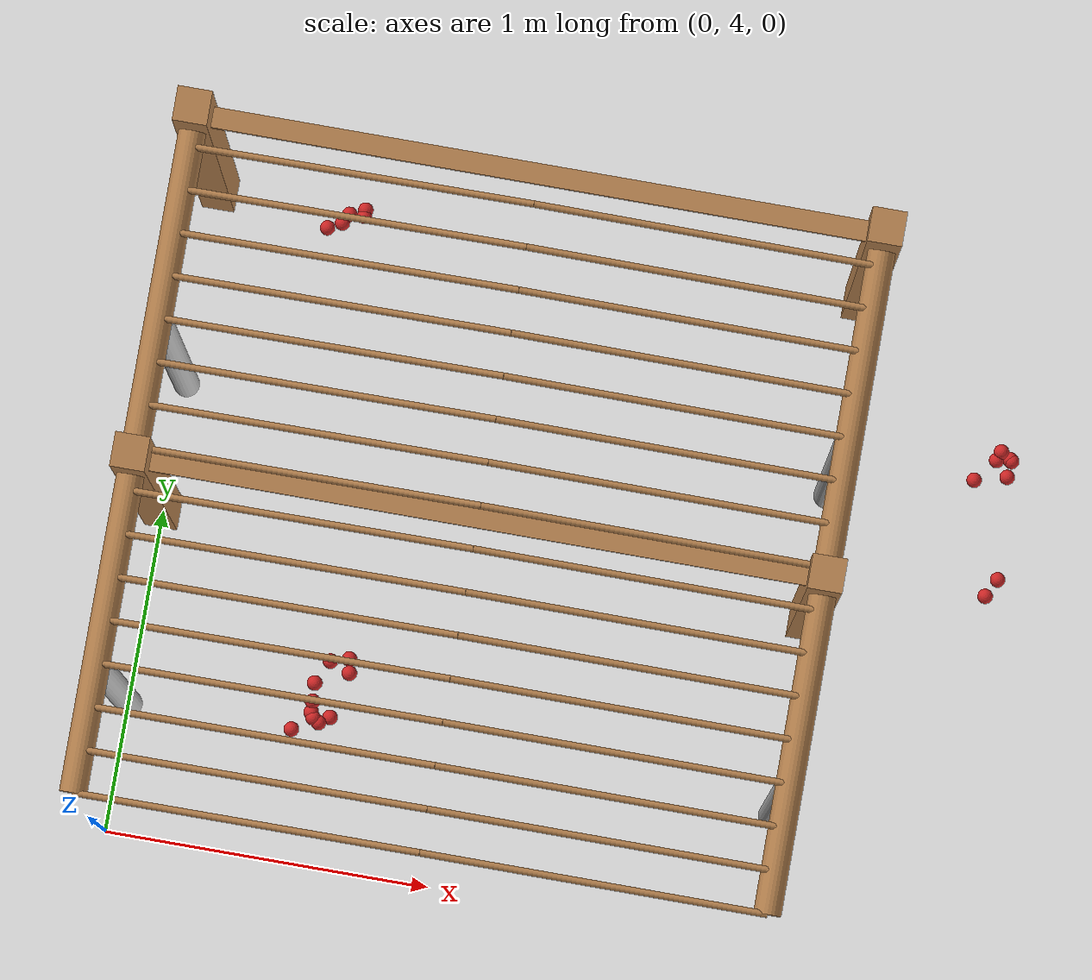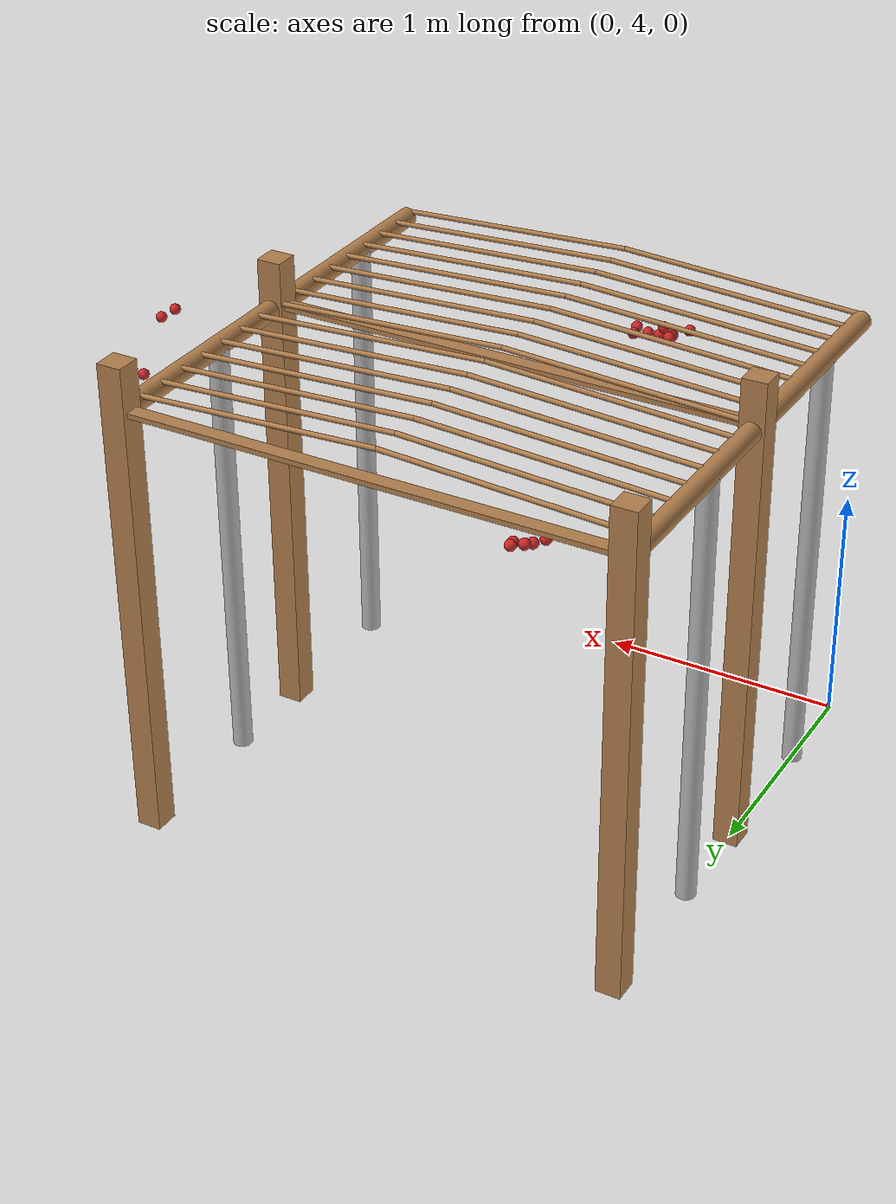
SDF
<sdf version="1.4">
 <model name="pergola">
  <include><name>post_5</name><pose>0.0 5.0 0 0 0 0</pose><uri>model://post</uri></include>
  <include><name>post_6</name><pose>0.0 6.0 0 0 0 0</pose><uri>model://post</uri></include>
  <include><name>post_12</name><pose>2.0 5.0 0 0 0 0</pose><uri>model://post</uri></include>
  <include><name>post_13</name><pose>2.0 6.0 0 0 0 0</pose><uri>model://post</uri></include>
  <link name="beam_5">
   <pose>1.0 5.0 1.81 0 0 0</pose>
   <collision name="collision"><geometry><box><size>2.0 0.06 0.02</size></box></geometry></collision>
   <visual name="visual">
    <geometry><box><size>2.0 0.06 0.02</size></box></geometry>
    <material><script><name>Gazebo/Wood</name></script></material>
   </visual>
   <inertial>
    <mass>5</mass>
    <inertia>
     <ixx>0.0016666666666666668</ixx>
     <ixy>0.0</ixy>
     <ixz>0.0</ixz>
     <iyy>1.6681666666666664</iyy>
     <iyz>0.0</iyz>
     <izz>1.6668333333333332</izz>
    </inertia>
   </inertial>
  </link>
  <link name="beam_6">
   <pose>1.0 6.0 1.81 0 0 0</pose>
   <collision name="collision"><geometry><box><size>2.0 0.06 0.02</size></box></geometry></collision>
   <visual name="visual">
    <geometry><box><size>2.0 0.06 0.02</size></box></geometry>
    <material><script><name>Gazebo/Wood</name></script></material>
   </visual>
   <inertial>
    <mass>5</mass>
    <inertia>
     <ixx>0.0016666666666666668</ixx>
     <ixy>0.0</ixy>
     <ixz>0.0</ixz>
     <iyy>1.6681666666666664</iyy>
     <iyz>0.0</iyz>
     <izz>1.6668333333333332</izz>
    </inertia>
   </inertial>
  </link>
  <include><name>tree_4</name><pose>0.0 4.4 0 0 0 0</pose><uri>model://tree_trunk</uri></include>
  <include><name>tree_5</name><pose>0.0 5.4 0 0 0 0</pose><uri>model://tree_trunk</uri></include>
  <include><name>tree_10</name><pose>2.0 4.4 0 0 0 0</pose><uri>model://tree_trunk</uri></include>
  <include><name>tree_11</name><pose>2.0 5.4 0 0 0 0</pose><uri>model://tree_trunk</uri></include>
  <link name="baseBranch_4">
   <pose>0.0 4.5 1.8 1.5707963267948966 0 0</pose>
   <collision name="collision">
    <geometry><cylinder><radius>0.04</radius><length>0.94</length></cylinder></geometry>
   </collision>
   <visual name="visual">
    <geometry><cylinder><radius>0.04</radius><length>0.94</length></cylinder></geometry>
    <material><script><name>Gazebo/WoodFloor</name></script></material>
   </visual>
   <inertial>
    <mass>10</mass>
    <inertia>
     <ixx>0.7403333333333334</ixx>
     <ixy>0.0</ixy>
     <ixz>0.0</ixz>
     <iyy>0.7403333333333334</iyy>
     <iyz>0.0</iyz>
     <izz>0.008</izz>
    </inertia>
   </inertial>
  </link>
  <link name="baseBranch_5">
   <pose>0.0 5.5 1.8 1.5707963267948966 0 0</pose>
   <collision name="collision">
    <geometry><cylinder><radius>0.04</radius><length>0.94</length></cylinder></geometry>
   </collision>
   <visual name="visual">
    <geometry><cylinder><radius>0.04</radius><length>0.94</length></cylinder></geometry>
    <material><script><name>Gazebo/WoodFloor</name></script></material>
   </visual>
   <inertial>
    <mass>10</mass>
    <inertia>
     <ixx>0.7403333333333334</ixx>
     <ixy>0.0</ixy>
     <ixz>0.0</ixz>
     <iyy>0.7403333333333334</iyy>
     <iyz>0.0</iyz>
     <izz>0.008</izz>
    </inertia>
   </inertial>
  </link>
  <link name="baseBranch_10">
   <pose>2.0 4.5 1.8 1.5707963267948966 0 0</pose>
   <collision name="collision">
    <geometry><cylinder><radius>0.04</radius><length>0.94</length></cylinder></geometry>
   </collision>
   <visual name="visual">
    <geometry><cylinder><radius>0.04</radius><length>0.94</length></cylinder></geometry>
    <material><script><name>Gazebo/WoodFloor</name></script></material>
   </visual>
   <inertial>
    <mass>10</mass>
    <inertia>
     <ixx>0.7403333333333334</ixx>
     <ixy>0.0</ixy>
     <ixz>0.0</ixz>
     <iyy>0.7403333333333334</iyy>
     <iyz>0.0</iyz>
     <izz>0.008</izz>
    </inertia>
   </inertial>
  </link>
  <link name="baseBranch_11">
   <pose>2.0 5.5 1.8 1.5707963267948966 0 0</pose>
   <collision name="collision">
    <geometry><cylinder><radius>0.04</radius><length>0.94</length></cylinder></geometry>
   </collision>
   <visual name="visual">
    <geometry><cylinder><radius>0.04</radius><length>0.94</length></cylinder></geometry>
    <material><script><name>Gazebo/WoodFloor</name></script></material>
   </visual>
   <inertial>
    <mass>10</mass>
    <inertia>
     <ixx>0.7403333333333334</ixx>
     <ixy>0.0</ixy>
     <ixz>0.0</ixz>
     <iyy>0.7403333333333334</iyy>
     <iyz>0.0</iyz>
     <izz>0.008</izz>
    </inertia>
   </inertial>
  </link>
  <link name="vine_64">
   <pose>0.5 4.03 1.85 0 1.5208379310729538 0</pose>
   <collision name="collision">
    <geometry><cylinder><radius>0.01</radius><length>1.0012492197250393</length></cylinder></geometry>
   </collision>
   <visual name="visual">
    <geometry><cylinder><radius>0.01</radius><length>1.0012492197250393</length></cylinder></geometry>
    <material><script><name>Gazebo/WoodFloor</name></script></material>
   </visual>
   <inertial>
    <mass>5</mass>
    <inertia>
     <ixx>0.41783333333333345</ixx>
     <ixy>0.0</ixy>
     <ixz>0.0</ixz>
     <iyy>0.41783333333333345</iyy>
     <iyz>0.0</iyz>
     <izz>0.00025</izz>
    </inertia>
   </inertial>
  </link>
  <link name="vine_65">
   <pose>1.5 4.03 1.85 0 -1.5208379310729538 0</pose>
   <collision name="collision">
    <geometry><cylinder><radius>0.01</radius><length>1.0012492197250393</length></cylinder></geometry>
   </collision>
   <visual name="visual">
    <geometry><cylinder><radius>0.01</radius><length>1.0012492197250393</length></cylinder></geometry>
    <material><script><name>Gazebo/WoodFloor</name></script></material>
   </visual>
   <inertial>
    <mass>5</mass>
    <inertia>
     <ixx>0.41783333333333345</ixx>
     <ixy>0.0</ixy>
     <ixz>0.0</ixz>
     <iyy>0.41783333333333345</iyy>
     <iyz>0.0</iyz>
     <izz>0.00025</izz>
    </inertia>
   </inertial>
  </link>
  <link name="vine_66">
   <pose>0.5 4.155 1.85 0 1.5208379310729538 0</pose>
   <collision name="collision">
    <geometry><cylinder><radius>0.01</radius><length>1.0012492197250393</length></cylinder></geometry>
   </collision>
   <visual name="visual">
    <geometry><cylinder><radius>0.01</radius><length>1.0012492197250393</length></cylinder></geometry>
    <material><script><name>Gazebo/WoodFloor</name></script></material>
   </visual>
   <inertial>
    <mass>5</mass>
    <inertia>
     <ixx>0.41783333333333345</ixx>
     <ixy>0.0</ixy>
     <ixz>0.0</ixz>
     <iyy>0.41783333333333345</iyy>
     <iyz>0.0</iyz>
     <izz>0.00025</izz>
    </inertia>
   </inertial>
  </link>
  <link name="vine_67">
   <pose>1.5 4.155 1.85 0 -1.5208379310729538 0</pose>
   <collision name="collision">
    <geometry><cylinder><radius>0.01</radius><length>1.0012492197250393</length></cylinder></geometry>
   </collision>
   <visual name="visual">
    <geometry><cylinder><radius>0.01</radius><length>1.0012492197250393</length></cylinder></geometry>
    <material><script><name>Gazebo/WoodFloor</name></script></material>
   </visual>
   <inertial>
    <mass>5</mass>
    <inertia>
     <ixx>0.41783333333333345</ixx>
     <ixy>0.0</ixy>
     <ixz>0.0</ixz>
     <iyy>0.41783333333333345</iyy>
     <iyz>0.0</iyz>
     <izz>0.00025</izz>
    </inertia>
   </inertial>
  </link>
  <link name="vine_68">
   <pose>0.5 4.28 1.85 0 1.5208379310729538 0</pose>
   <collision name="collision">
    <geometry><cylinder><radius>0.01</radius><length>1.0012492197250393</length></cylinder></geometry>
   </collision>
   <visual name="visual">
    <geometry><cylinder><radius>0.01</radius><length>1.0012492197250393</length></cylinder></geometry>
    <material><script><name>Gazebo/WoodFloor</name></script></material>
   </visual>
   <inertial>
    <mass>5</mass>
    <inertia>
     <ixx>0.41783333333333345</ixx>
     <ixy>0.0</ixy>
     <ixz>0.0</ixz>
     <iyy>0.41783333333333345</iyy>
     <iyz>0.0</iyz>
     <izz>0.00025</izz>
    </inertia>
   </inertial>
  </link>
  <link name="vine_69">
   <pose>1.5 4.28 1.85 0 -1.5208379310729538 0</pose>
   <collision name="collision">
    <geometry><cylinder><radius>0.01</radius><length>1.0012492197250393</length></cylinder></geometry>
   </collision>
   <visual name="visual">
    <geometry><cylinder><radius>0.01</radius><length>1.0012492197250393</length></cylinder></geometry>
    <material><script><name>Gazebo/WoodFloor</name></script></material>
   </visual>
   <inertial>
    <mass>5</mass>
    <inertia>
     <ixx>0.41783333333333345</ixx>
     <ixy>0.0</ixy>
     <ixz>0.0</ixz>
     <iyy>0.41783333333333345</iyy>
     <iyz>0.0</iyz>
     <izz>0.00025</izz>
    </inertia>
   </inertial>
  </link>
  <link name="vine_70">
   <pose>0.5 4.405 1.85 0 1.5208379310729538 0</pose>
   <collision name="collision">
    <geometry><cylinder><radius>0.01</radius><length>1.0012492197250393</length></cylinder></geometry>
   </collision>
   <visual name="visual">
    <geometry><cylinder><radius>0.01</radius><length>1.0012492197250393</length></cylinder></geometry>
    <material><script><name>Gazebo/WoodFloor</name></script></material>
   </visual>
   <inertial>
    <mass>5</mass>
    <inertia>
     <ixx>0.41783333333333345</ixx>
     <ixy>0.0</ixy>
     <ixz>0.0</ixz>
     <iyy>0.41783333333333345</iyy>
     <iyz>0.0</iyz>
     <izz>0.00025</izz>
    </inertia>
   </inertial>
  </link>
  <link name="vine_71">
   <pose>1.5 4.405 1.85 0 -1.5208379310729538 0</pose>
   <collision name="collision">
    <geometry><cylinder><radius>0.01</radius><length>1.0012492197250393</length></cylinder></geometry>
   </collision>
   <visual name="visual">
    <geometry><cylinder><radius>0.01</radius><length>1.0012492197250393</length></cylinder></geometry>
    <material><script><name>Gazebo/WoodFloor</name></script></material>
   </visual>
   <inertial>
    <mass>5</mass>
    <inertia>
     <ixx>0.41783333333333345</ixx>
     <ixy>0.0</ixy>
     <ixz>0.0</ixz>
     <iyy>0.41783333333333345</iyy>
     <iyz>0.0</iyz>
     <izz>0.00025</izz>
    </inertia>
   </inertial>
  </link>
  <link name="vine_72">
   <pose>0.5 4.53 1.85 0 1.5208379310729538 0</pose>
   <collision name="collision">
    <geometry><cylinder><radius>0.01</radius><length>1.0012492197250393</length></cylinder></geometry>
   </collision>
   <visual name="visual">
    <geometry><cylinder><radius>0.01</radius><length>1.0012492197250393</length></cylinder></geometry>
    <material><script><name>Gazebo/WoodFloor</name></script></material>
   </visual>
   <inertial>
    <mass>5</mass>
    <inertia>
     <ixx>0.41783333333333345</ixx>
     <ixy>0.0</ixy>
     <ixz>0.0</ixz>
     <iyy>0.41783333333333345</iyy>
     <iyz>0.0</iyz>
     <izz>0.00025</izz>
    </inertia>
   </inertial>
  </link>
  <link name="vine_73">
   <pose>1.5 4.53 1.85 0 -1.5208379310729538 0</pose>
   <collision name="collision">
    <geometry><cylinder><radius>0.01</radius><length>1.0012492197250393</length></cylinder></geometry>
   </collision>
   <visual name="visual">
    <geometry><cylinder><radius>0.01</radius><length>1.0012492197250393</length></cylinder></geometry>
    <material><script><name>Gazebo/WoodFloor</name></script></material>
   </visual>
   <inertial>
    <mass>5</mass>
    <inertia>
     <ixx>0.41783333333333345</ixx>
     <ixy>0.0</ixy>
     <ixz>0.0</ixz>
     <iyy>0.41783333333333345</iyy>
     <iyz>0.0</iyz>
     <izz>0.00025</izz>
    </inertia>
   </inertial>
  </link>
  <link name="vine_74">
   <pose>0.5 4.655 1.85 0 1.5208379310729538 0</pose>
   <collision name="collision">
    <geometry><cylinder><radius>0.01</radius><length>1.0012492197250393</length></cylinder></geometry>
   </collision>
   <visual name="visual">
    <geometry><cylinder><radius>0.01</radius><length>1.0012492197250393</length></cylinder></geometry>
    <material><script><name>Gazebo/WoodFloor</name></script></material>
   </visual>
   <inertial>
    <mass>5</mass>
    <inertia>
     <ixx>0.41783333333333345</ixx>
     <ixy>0.0</ixy>
     <ixz>0.0</ixz>
     <iyy>0.41783333333333345</iyy>
     <iyz>0.0</iyz>
     <izz>0.00025</izz>
    </inertia>
   </inertial>
  </link>
  <link name="vine_75">
   <pose>1.5 4.655 1.85 0 -1.5208379310729538 0</pose>
   <collision name="collision">
    <geometry><cylinder><radius>0.01</radius><length>1.0012492197250393</length></cylinder></geometry>
   </collision>
   <visual name="visual">
    <geometry><cylinder><radius>0.01</radius><length>1.0012492197250393</length></cylinder></geometry>
    <material><script><name>Gazebo/WoodFloor</name></script></material>
   </visual>
   <inertial>
    <mass>5</mass>
    <inertia>
     <ixx>0.41783333333333345</ixx>
     <ixy>0.0</ixy>
     <ixz>0.0</ixz>
     <iyy>0.41783333333333345</iyy>
     <iyz>0.0</iyz>
     <izz>0.00025</izz>
    </inertia>
   </inertial>
  </link>
  <link name="vine_76">
   <pose>0.5 4.78 1.85 0 1.5208379310729538 0</pose>
   <collision name="collision">
    <geometry><cylinder><radius>0.01</radius><length>1.0012492197250393</length></cylinder></geometry>
   </collision>
   <visual name="visual">
    <geometry><cylinder><radius>0.01</radius><length>1.0012492197250393</length></cylinder></geometry>
    <material><script><name>Gazebo/WoodFloor</name></script></material>
   </visual>
   <inertial>
    <mass>5</mass>
    <inertia>
     <ixx>0.41783333333333345</ixx>
     <ixy>0.0</ixy>
     <ixz>0.0</ixz>
     <iyy>0.41783333333333345</iyy>
     <iyz>0.0</iyz>
     <izz>0.00025</izz>
    </inertia>
   </inertial>
  </link>
  <link name="vine_77">
   <pose>1.5 4.78 1.85 0 -1.5208379310729538 0</pose>
   <collision name="collision">
    <geometry><cylinder><radius>0.01</radius><length>1.0012492197250393</length></cylinder></geometry>
   </collision>
   <visual name="visual">
    <geometry><cylinder><radius>0.01</radius><length>1.0012492197250393</length></cylinder></geometry>
    <material><script><name>Gazebo/WoodFloor</name></script></material>
   </visual>
   <inertial>
    <mass>5</mass>
    <inertia>
     <ixx>0.41783333333333345</ixx>
     <ixy>0.0</ixy>
     <ixz>0.0</ixz>
     <iyy>0.41783333333333345</iyy>
     <iyz>0.0</iyz>
     <izz>0.00025</izz>
    </inertia>
   </inertial>
  </link>
  <link name="vine_78">
   <pose>0.5 4.905 1.85 0 1.5208379310729538 0</pose>
   <collision name="collision">
    <geometry><cylinder><radius>0.01</radius><length>1.0012492197250393</length></cylinder></geometry>
   </collision>
   <visual name="visual">
    <geometry><cylinder><radius>0.01</radius><length>1.0012492197250393</length></cylinder></geometry>
    <material><script><name>Gazebo/WoodFloor</name></script></material>
   </visual>
   <inertial>
    <mass>5</mass>
    <inertia>
     <ixx>0.41783333333333345</ixx>
     <ixy>0.0</ixy>
     <ixz>0.0</ixz>
     <iyy>0.41783333333333345</iyy>
     <iyz>0.0</iyz>
     <izz>0.00025</izz>
    </inertia>
   </inertial>
  </link>
  <link name="vine_79">
   <pose>1.5 4.905 1.85 0 -1.5208379310729538 0</pose>
   <collision name="collision">
    <geometry><cylinder><radius>0.01</radius><length>1.0012492197250393</length></cylinder></geometry>
   </collision>
   <visual name="visual">
    <geometry><cylinder><radius>0.01</radius><length>1.0012492197250393</length></cylinder></geometry>
    <material><script><name>Gazebo/WoodFloor</name></script></material>
   </visual>
   <inertial>
    <mass>5</mass>
    <inertia>
     <ixx>0.41783333333333345</ixx>
     <ixy>0.0</ixy>
     <ixz>0.0</ixz>
     <iyy>0.41783333333333345</iyy>
     <iyz>0.0</iyz>
     <izz>0.00025</izz>
    </inertia>
   </inertial>
  </link>
  <link name="vine_80">
   <pose>0.5 5.03 1.85 0 1.5208379310729538 0</pose>
   <collision name="collision">
    <geometry><cylinder><radius>0.01</radius><length>1.0012492197250393</length></cylinder></geometry>
   </collision>
   <visual name="visual">
    <geometry><cylinder><radius>0.01</radius><length>1.0012492197250393</length></cylinder></geometry>
    <material><script><name>Gazebo/WoodFloor</name></script></material>
   </visual>
   <inertial>
    <mass>5</mass>
    <inertia>
     <ixx>0.41783333333333345</ixx>
     <ixy>0.0</ixy>
     <ixz>0.0</ixz>
     <iyy>0.41783333333333345</iyy>
     <iyz>0.0</iyz>
     <izz>0.00025</izz>
    </inertia>
   </inertial>
  </link>
  <link name="vine_81">
   <pose>1.5 5.03 1.85 0 -1.5208379310729538 0</pose>
   <collision name="collision">
    <geometry><cylinder><radius>0.01</radius><length>1.0012492197250393</length></cylinder></geometry>
   </collision>
   <visual name="visual">
    <geometry><cylinder><radius>0.01</radius><length>1.0012492197250393</length></cylinder></geometry>
    <material><script><name>Gazebo/WoodFloor</name></script></material>
   </visual>
   <inertial>
    <mass>5</mass>
    <inertia>
     <ixx>0.41783333333333345</ixx>
     <ixy>0.0</ixy>
     <ixz>0.0</ixz>
     <iyy>0.41783333333333345</iyy>
     <iyz>0.0</iyz>
     <izz>0.00025</izz>
    </inertia>
   </inertial>
  </link>
  <link name="vine_82">
   <pose>0.5 5.155 1.85 0 1.5208379310729538 0</pose>
   <collision name="collision">
    <geometry><cylinder><radius>0.01</radius><length>1.0012492197250393</length></cylinder></geometry>
   </collision>
   <visual name="visual">
    <geometry><cylinder><radius>0.01</radius><length>1.0012492197250393</length></cylinder></geometry>
    <material><script><name>Gazebo/WoodFloor</name></script></material>
   </visual>
   <inertial>
    <mass>5</mass>
    <inertia>
     <ixx>0.41783333333333345</ixx>
     <ixy>0.0</ixy>
     <ixz>0.0</ixz>
     <iyy>0.41783333333333345</iyy>
     <iyz>0.0</iyz>
     <izz>0.00025</izz>
    </inertia>
   </inertial>
  </link>
  <link name="vine_83">
   <pose>1.5 5.155 1.85 0 -1.5208379310729538 0</pose>
   <collision name="collision">
    <geometry><cylinder><radius>0.01</radius><length>1.0012492197250393</length></cylinder></geometry>
   </collision>
   <visual name="visual">
    <geometry><cylinder><radius>0.01</radius><length>1.0012492197250393</length></cylinder></geometry>
    <material><script><name>Gazebo/WoodFloor</name></script></material>
   </visual>
   <inertial>
    <mass>5</mass>
    <inertia>
     <ixx>0.41783333333333345</ixx>
     <ixy>0.0</ixy>
     <ixz>0.0</ixz>
     <iyy>0.41783333333333345</iyy>
     <iyz>0.0</iyz>
     <izz>0.00025</izz>
    </inertia>
   </inertial>
  </link>
  <link name="vine_84">
   <pose>0.5 5.28 1.85 0 1.5208379310729538 0</pose>
   <collision name="collision">
    <geometry><cylinder><radius>0.01</radius><length>1.0012492197250393</length></cylinder></geometry>
   </collision>
   <visual name="visual">
    <geometry><cylinder><radius>0.01</radius><length>1.0012492197250393</length></cylinder></geometry>
    <material><script><name>Gazebo/WoodFloor</name></script></material>
   </visual>
   <inertial>
    <mass>5</mass>
    <inertia>
     <ixx>0.41783333333333345</ixx>
     <ixy>0.0</ixy>
     <ixz>0.0</ixz>
     <iyy>0.41783333333333345</iyy>
     <iyz>0.0</iyz>
     <izz>0.00025</izz>
    </inertia>
   </inertial>
  </link>
  <link name="vine_85">
   <pose>1.5 5.28 1.85 0 -1.5208379310729538 0</pose>
   <collision name="collision">
    <geometry><cylinder><radius>0.01</radius><length>1.0012492197250393</length></cylinder></geometry>
   </collision>
   <visual name="visual">
    <geometry><cylinder><radius>0.01</radius><length>1.0012492197250393</length></cylinder></geometry>
    <material><script><name>Gazebo/WoodFloor</name></script></material>
   </visual>
   <inertial>
    <mass>5</mass>
    <inertia>
     <ixx>0.41783333333333345</ixx>
     <ixy>0.0</ixy>
     <ixz>0.0</ixz>
     <iyy>0.41783333333333345</iyy>
     <iyz>0.0</iyz>
     <izz>0.00025</izz>
    </inertia>
   </inertial>
  </link>
  <link name="vine_86">
   <pose>0.5 5.405 1.85 0 1.5208379310729538 0</pose>
   <collision name="collision">
    <geometry><cylinder><radius>0.01</radius><length>1.0012492197250393</length></cylinder></geometry>
   </collision>
   <visual name="visual">
    <geometry><cylinder><radius>0.01</radius><length>1.0012492197250393</length></cylinder></geometry>
    <material><script><name>Gazebo/WoodFloor</name></script></material>
   </visual>
   <inertial>
    <mass>5</mass>
    <inertia>
     <ixx>0.41783333333333345</ixx>
     <ixy>0.0</ixy>
     <ixz>0.0</ixz>
     <iyy>0.41783333333333345</iyy>
     <iyz>0.0</iyz>
     <izz>0.00025</izz>
    </inertia>
   </inertial>
  </link>
  <link name="vine_87">
   <pose>1.5 5.405 1.85 0 -1.5208379310729538 0</pose>
   <collision name="collision">
    <geometry><cylinder><radius>0.01</radius><length>1.0012492197250393</length></cylinder></geometry>
   </collision>
   <visual name="visual">
    <geometry><cylinder><radius>0.01</radius><length>1.0012492197250393</length></cylinder></geometry>
    <material><script><name>Gazebo/WoodFloor</name></script></material>
   </visual>
   <inertial>
    <mass>5</mass>
    <inertia>
     <ixx>0.41783333333333345</ixx>
     <ixy>0.0</ixy>
     <ixz>0.0</ixz>
     <iyy>0.41783333333333345</iyy>
     <iyz>0.0</iyz>
     <izz>0.00025</izz>
    </inertia>
   </inertial>
  </link>
  <link name="vine_88">
   <pose>0.5 5.53 1.85 0 1.5208379310729538 0</pose>
   <collision name="collision">
    <geometry><cylinder><radius>0.01</radius><length>1.0012492197250393</length></cylinder></geometry>
   </collision>
   <visual name="visual">
    <geometry><cylinder><radius>0.01</radius><length>1.0012492197250393</length></cylinder></geometry>
    <material><script><name>Gazebo/WoodFloor</name></script></material>
   </visual>
   <inertial>
    <mass>5</mass>
    <inertia>
     <ixx>0.41783333333333345</ixx>
     <ixy>0.0</ixy>
     <ixz>0.0</ixz>
     <iyy>0.41783333333333345</iyy>
     <iyz>0.0</iyz>
     <izz>0.00025</izz>
    </inertia>
   </inertial>
  </link>
  <link name="vine_89">
   <pose>1.5 5.53 1.85 0 -1.5208379310729538 0</pose>
   <collision name="collision">
    <geometry><cylinder><radius>0.01</radius><length>1.0012492197250393</length></cylinder></geometry>
   </collision>
   <visual name="visual">
    <geometry><cylinder><radius>0.01</radius><length>1.0012492197250393</length></cylinder></geometry>
    <material><script><name>Gazebo/WoodFloor</name></script></material>
   </visual>
   <inertial>
    <mass>5</mass>
    <inertia>
     <ixx>0.41783333333333345</ixx>
     <ixy>0.0</ixy>
     <ixz>0.0</ixz>
     <iyy>0.41783333333333345</iyy>
     <iyz>0.0</iyz>
     <izz>0.00025</izz>
    </inertia>
   </inertial>
  </link>
  <link name="vine_90">
   <pose>0.5 5.655 1.85 0 1.5208379310729538 0</pose>
   <collision name="collision">
    <geometry><cylinder><radius>0.01</radius><length>1.0012492197250393</length></cylinder></geometry>
   </collision>
   <visual name="visual">
    <geometry><cylinder><radius>0.01</radius><length>1.0012492197250393</length></cylinder></geometry>
    <material><script><name>Gazebo/WoodFloor</name></script></material>
   </visual>
   <inertial>
    <mass>5</mass>
    <inertia>
     <ixx>0.41783333333333345</ixx>
     <ixy>0.0</ixy>
     <ixz>0.0</ixz>
     <iyy>0.41783333333333345</iyy>
     <iyz>0.0</iyz>
     <izz>0.00025</izz>
    </inertia>
   </inertial>
  </link>
  <link name="vine_91">
   <pose>1.5 5.655 1.85 0 -1.5208379310729538 0</pose>
   <collision name="collision">
    <geometry><cylinder><radius>0.01</radius><length>1.0012492197250393</length></cylinder></geometry>
   </collision>
   <visual name="visual">
    <geometry><cylinder><radius>0.01</radius><length>1.0012492197250393</length></cylinder></geometry>
    <material><script><name>Gazebo/WoodFloor</name></script></material>
   </visual>
   <inertial>
    <mass>5</mass>
    <inertia>
     <ixx>0.41783333333333345</ixx>
     <ixy>0.0</ixy>
     <ixz>0.0</ixz>
     <iyy>0.41783333333333345</iyy>
     <iyz>0.0</iyz>
     <izz>0.00025</izz>
    </inertia>
   </inertial>
  </link>
  <link name="vine_92">
   <pose>0.5 5.78 1.85 0 1.5208379310729538 0</pose>
   <collision name="collision">
    <geometry><cylinder><radius>0.01</radius><length>1.0012492197250393</length></cylinder></geometry>
   </collision>
   <visual name="visual">
    <geometry><cylinder><radius>0.01</radius><length>1.0012492197250393</length></cylinder></geometry>
    <material><script><name>Gazebo/WoodFloor</name></script></material>
   </visual>
   <inertial>
    <mass>5</mass>
    <inertia>
     <ixx>0.41783333333333345</ixx>
     <ixy>0.0</ixy>
     <ixz>0.0</ixz>
     <iyy>0.41783333333333345</iyy>
     <iyz>0.0</iyz>
     <izz>0.00025</izz>
    </inertia>
   </inertial>
  </link>
  <link name="vine_93">
   <pose>1.5 5.78 1.85 0 -1.5208379310729538 0</pose>
   <collision name="collision">
    <geometry><cylinder><radius>0.01</radius><length>1.0012492197250393</length></cylinder></geometry>
   </collision>
   <visual name="visual">
    <geometry><cylinder><radius>0.01</radius><length>1.0012492197250393</length></cylinder></geometry>
    <material><script><name>Gazebo/WoodFloor</name></script></material>
   </visual>
   <inertial>
    <mass>5</mass>
    <inertia>
     <ixx>0.41783333333333345</ixx>
     <ixy>0.0</ixy>
     <ixz>0.0</ixz>
     <iyy>0.41783333333333345</iyy>
     <iyz>0.0</iyz>
     <izz>0.00025</izz>
    </inertia>
   </inertial>
  </link>
  <link name="vine_94">
   <pose>0.5 5.905 1.85 0 1.5208379310729538 0</pose>
   <collision name="collision">
    <geometry><cylinder><radius>0.01</radius><length>1.0012492197250393</length></cylinder></geometry>
   </collision>
   <visual name="visual">
    <geometry><cylinder><radius>0.01</radius><length>1.0012492197250393</length></cylinder></geometry>
    <material><script><name>Gazebo/WoodFloor</name></script></material>
   </visual>
   <inertial>
    <mass>5</mass>
    <inertia>
     <ixx>0.41783333333333345</ixx>
     <ixy>0.0</ixy>
     <ixz>0.0</ixz>
     <iyy>0.41783333333333345</iyy>
     <iyz>0.0</iyz>
     <izz>0.00025</izz>
    </inertia>
   </inertial>
  </link>
  <link name="vine_95">
   <pose>1.5 5.905 1.85 0 -1.5208379310729538 0</pose>
   <collision name="collision">
    <geometry><cylinder><radius>0.01</radius><length>1.0012492197250393</length></cylinder></geometry>
   </collision>
   <visual name="visual">
    <geometry><cylinder><radius>0.01</radius><length>1.0012492197250393</length></cylinder></geometry>
    <material><script><name>Gazebo/WoodFloor</name></script></material>
   </visual>
   <inertial>
    <mass>5</mass>
    <inertia>
     <ixx>0.41783333333333345</ixx>
     <ixy>0.0</ixy>
     <ixz>0.0</ixz>
     <iyy>0.41783333333333345</iyy>
     <iyz>0.0</iyz>
     <izz>0.00025</izz>
    </inertia>
   </inertial>
  </link>
  <link name="fruit_1">
   <pose>2.461765766174674 5.037894558662503 1.6903171300374824 0 0 0</pose>
   <collision name="fruit_collision_1"><geometry><sphere><radius>0.022</radius></sphere></geometry></collision>
   <visual name="visual">
    <geometry><sphere><radius>0.022</radius></sphere></geometry>
    <material><script><name>Gazebo/Red</name></script></material>
   </visual>
   <inertial>
    <mass>0.05</mass>
    <inertia>
     <ixx>9.679999999999999e-06</ixx>
     <ixy>0.0</ixy>
     <ixz>0.0</ixz>
     <iyy>9.679999999999999e-06</iyy>
     <iyz>0.0</iyz>
     <izz>9.679999999999999e-06</izz>
    </inertia>
   </inertial>
   <sensor name="fruit_contact_1" type="contact">
    <contact><collision>fruit_collision_1</collision></contact>
   </sensor>
  </link>
  <link name="fruit_7">
   <pose>0.6216985066088777 4.4563540338456455 1.8039702835072875 0 0 0</pose>
   <collision name="fruit_collision_7"><geometry><sphere><radius>0.022</radius></sphere></geometry></collision>
   <visual name="visual">
    <geometry><sphere><radius>0.022</radius></sphere></geometry>
    <material><script><name>Gazebo/Red</name></script></material>
   </visual>
   <inertial>
    <mass>0.05</mass>
    <inertia>
     <ixx>9.679999999999999e-06</ixx>
     <ixy>0.0</ixy>
     <ixz>0.0</ixz>
     <iyy>9.679999999999999e-06</iyy>
     <iyz>0.0</iyz>
     <izz>9.679999999999999e-06</izz>
    </inertia>
   </inertial>
   <sensor name="fruit_contact_7" type="contact">
    <contact><collision>fruit_collision_7</collision></contact>
   </sensor>
  </link>
  <link name="fruit_15">
   <pose>0.42112253352203266 5.765814095149242 1.617879759060214 0 0 0</pose>
   <collision name="fruit_collision_15"><geometry><sphere><radius>0.022</radius></sphere></geometry></collision>
   <visual name="visual">
    <geometry><sphere><radius>0.022</radius></sphere></geometry>
    <material><script><name>Gazebo/Red</name></script></material>
   </visual>
   <inertial>
    <mass>0.05</mass>
    <inertia>
     <ixx>9.679999999999999e-06</ixx>
     <ixy>0.0</ixy>
     <ixz>0.0</ixz>
     <iyy>9.679999999999999e-06</iyy>
     <iyz>0.0</iyz>
     <izz>9.679999999999999e-06</izz>
    </inertia>
   </inertial>
   <sensor name="fruit_contact_15" type="contact">
    <contact><collision>fruit_collision_15</collision></contact>
   </sensor>
  </link>
  <link name="fruit_16">
   <pose>2.3791340458336787 5.372159289844908 1.5742996024329095 0 0 0</pose>
   <collision name="fruit_collision_16"><geometry><sphere><radius>0.022</radius></sphere></geometry></collision>
   <visual name="visual">
    <geometry><sphere><radius>0.022</radius></sphere></geometry>
    <material><script><name>Gazebo/Red</name></script></material>
   </visual>
   <inertial>
    <mass>0.05</mass>
    <inertia>
     <ixx>9.679999999999999e-06</ixx>
     <ixy>0.0</ixy>
     <ixz>0.0</ixz>
     <iyy>9.679999999999999e-06</iyy>
     <iyz>0.0</iyz>
     <izz>9.679999999999999e-06</izz>
    </inertia>
   </inertial>
   <sensor name="fruit_contact_16" type="contact">
    <contact><collision>fruit_collision_16</collision></contact>
   </sensor>
  </link>
  <link name="fruit_24">
   <pose>0.5766587121702167 4.318518370084702 1.7419043829826404 0 0 0</pose>
   <collision name="fruit_collision_24"><geometry><sphere><radius>0.022</radius></sphere></geometry></collision>
   <visual name="visual">
    <geometry><sphere><radius>0.022</radius></sphere></geometry>
    <material><script><name>Gazebo/Red</name></script></material>
   </visual>
   <inertial>
    <mass>0.05</mass>
    <inertia>
     <ixx>9.679999999999999e-06</ixx>
     <ixy>0.0</ixy>
     <ixz>0.0</ixz>
     <iyy>9.679999999999999e-06</iyy>
     <iyz>0.0</iyz>
     <izz>9.679999999999999e-06</izz>
    </inertia>
   </inertial>
   <sensor name="fruit_contact_24" type="contact">
    <contact><collision>fruit_collision_24</collision></contact>
   </sensor>
  </link>
  <link name="fruit_36">
   <pose>0.649293121168347 4.350791373066358 1.7314626903415198 0 0 0</pose>
   <collision name="fruit_collision_36"><geometry><sphere><radius>0.022</radius></sphere></geometry></collision>
   <visual name="visual">
    <geometry><sphere><radius>0.022</radius></sphere></geometry>
    <material><script><name>Gazebo/Red</name></script></material>
   </visual>
   <inertial>
    <mass>0.05</mass>
    <inertia>
     <ixx>9.679999999999999e-06</ixx>
     <ixy>0.0</ixy>
     <ixz>0.0</ixz>
     <iyy>9.679999999999999e-06</iyy>
     <iyz>0.0</iyz>
     <izz>9.679999999999999e-06</izz>
    </inertia>
   </inertial>
   <sensor name="fruit_contact_36" type="contact">
    <contact><collision>fruit_collision_36</collision></contact>
   </sensor>
  </link>
  <link name="fruit_39">
   <pose>0.5195497740308155 5.837540659699562 1.6019185641753768 0 0 0</pose>
   <collision name="fruit_collision_39"><geometry><sphere><radius>0.022</radius></sphere></geometry></collision>
   <visual name="visual">
    <geometry><sphere><radius>0.022</radius></sphere></geometry>
    <material><script><name>Gazebo/Red</name></script></material>
   </visual>
   <inertial>
    <mass>0.05</mass>
    <inertia>
     <ixx>9.679999999999999e-06</ixx>
     <ixy>0.0</ixy>
     <ixz>0.0</ixz>
     <iyy>9.679999999999999e-06</iyy>
     <iyz>0.0</iyz>
     <izz>9.679999999999999e-06</izz>
    </inertia>
   </inertial>
   <sensor name="fruit_contact_39" type="contact">
    <contact><collision>fruit_collision_39</collision></contact>
   </sensor>
  </link>
  <link name="fruit_42">
   <pose>0.6317939550898611 4.361298640902323 1.7359883756947854 0 0 0</pose>
   <collision name="fruit_collision_42"><geometry><sphere><radius>0.022</radius></sphere></geometry></collision>
   <visual name="visual">
    <geometry><sphere><radius>0.022</radius></sphere></geometry>
    <material><script><name>Gazebo/Red</name></script></material>
   </visual>
   <inertial>
    <mass>0.05</mass>
    <inertia>
     <ixx>9.679999999999999e-06</ixx>
     <ixy>0.0</ixy>
     <ixz>0.0</ixz>
     <iyy>9.679999999999999e-06</iyy>
     <iyz>0.0</iyz>
     <izz>9.679999999999999e-06</izz>
    </inertia>
   </inertial>
   <sensor name="fruit_contact_42" type="contact">
    <contact><collision>fruit_collision_42</collision></contact>
   </sensor>
  </link>
  <link name="fruit_45">
   <pose>2.443108973949161 5.4671622785840075 1.566931111941401 0 0 0</pose>
   <collision name="fruit_collision_45"><geometry><sphere><radius>0.022</radius></sphere></geometry></collision>
   <visual name="visual">
    <geometry><sphere><radius>0.022</radius></sphere></geometry>
    <material><script><name>Gazebo/Red</name></script></material>
   </visual>
   <inertial>
    <mass>0.05</mass>
    <inertia>
     <ixx>9.679999999999999e-06</ixx>
     <ixy>0.0</ixy>
     <ixz>0.0</ixz>
     <iyy>9.679999999999999e-06</iyy>
     <iyz>0.0</iyz>
     <izz>9.679999999999999e-06</izz>
    </inertia>
   </inertial>
   <sensor name="fruit_contact_45" type="contact">
    <contact><collision>fruit_collision_45</collision></contact>
   </sensor>
  </link>
  <link name="fruit_49">
   <pose>0.7138277855590496 4.500408394928596 1.8034919512442729 0 0 0</pose>
   <collision name="fruit_collision_49"><geometry><sphere><radius>0.022</radius></sphere></geometry></collision>
   <visual name="visual">
    <geometry><sphere><radius>0.022</radius></sphere></geometry>
    <material><script><name>Gazebo/Red</name></script></material>
   </visual>
   <inertial>
    <mass>0.05</mass>
    <inertia>
     <ixx>9.679999999999999e-06</ixx>
     <ixy>0.0</ixy>
     <ixz>0.0</ixz>
     <iyy>9.679999999999999e-06</iyy>
     <iyz>0.0</iyz>
     <izz>9.679999999999999e-06</izz>
    </inertia>
   </inertial>
   <sensor name="fruit_contact_49" type="contact">
    <contact><collision>fruit_collision_49</collision></contact>
   </sensor>
  </link>
  <link name="fruit_62">
   <pose>0.7066762782729915 4.541137224363343 1.7947395045180454 0 0 0</pose>
   <collision name="fruit_collision_62"><geometry><sphere><radius>0.022</radius></sphere></geometry></collision>
   <visual name="visual">
    <geometry><sphere><radius>0.022</radius></sphere></geometry>
    <material><script><name>Gazebo/Red</name></script></material>
   </visual>
   <inertial>
    <mass>0.05</mass>
    <inertia>
     <ixx>9.679999999999999e-06</ixx>
     <ixy>0.0</ixy>
     <ixz>0.0</ixz>
     <iyy>9.679999999999999e-06</iyy>
     <iyz>0.0</iyz>
     <izz>9.679999999999999e-06</izz>
    </inertia>
   </inertial>
   <sensor name="fruit_contact_62" type="contact">
    <contact><collision>fruit_collision_62</collision></contact>
   </sensor>
  </link>
  <link name="fruit_63">
   <pose>2.477448871813057 5.445806954604001 1.5561752560699962 0 0 0</pose>
   <collision name="fruit_collision_63"><geometry><sphere><radius>0.022</radius></sphere></geometry></collision>
   <visual name="visual">
    <geometry><sphere><radius>0.022</radius></sphere></geometry>
    <material><script><name>Gazebo/Red</name></script></material>
   </visual>
   <inertial>
    <mass>0.05</mass>
    <inertia>
     <ixx>9.679999999999999e-06</ixx>
     <ixy>0.0</ixy>
     <ixz>0.0</ixz>
     <iyy>9.679999999999999e-06</iyy>
     <iyz>0.0</iyz>
     <izz>9.679999999999999e-06</izz>
    </inertia>
   </inertial>
   <sensor name="fruit_contact_63" type="contact">
    <contact><collision>fruit_collision_63</collision></contact>
   </sensor>
  </link>
  <link name="fruit_65">
   <pose>2.4716750616880847 5.450677559038006 1.554042895434874 0 0 0</pose>
   <collision name="fruit_collision_65"><geometry><sphere><radius>0.022</radius></sphere></geometry></collision>
   <visual name="visual">
    <geometry><sphere><radius>0.022</radius></sphere></geometry>
    <material><script><name>Gazebo/Red</name></script></material>
   </visual>
   <inertial>
    <mass>0.05</mass>
    <inertia>
     <ixx>9.679999999999999e-06</ixx>
     <ixy>0.0</ixy>
     <ixz>0.0</ixz>
     <iyy>9.679999999999999e-06</iyy>
     <iyz>0.0</iyz>
     <izz>9.679999999999999e-06</izz>
    </inertia>
   </inertial>
   <sensor name="fruit_contact_65" type="contact">
    <contact><collision>fruit_collision_65</collision></contact>
   </sensor>
  </link>
  <link name="fruit_66">
   <pose>0.6237205378741927 4.375927430225993 1.731850757863889 0 0 0</pose>
   <collision name="fruit_collision_66"><geometry><sphere><radius>0.022</radius></sphere></geometry></collision>
   <visual name="visual">
    <geometry><sphere><radius>0.022</radius></sphere></geometry>
    <material><script><name>Gazebo/Red</name></script></material>
   </visual>
   <inertial>
    <mass>0.05</mass>
    <inertia>
     <ixx>9.679999999999999e-06</ixx>
     <ixy>0.0</ixy>
     <ixz>0.0</ixz>
     <iyy>9.679999999999999e-06</iyy>
     <iyz>0.0</iyz>
     <izz>9.679999999999999e-06</izz>
    </inertia>
   </inertial>
   <sensor name="fruit_contact_66" type="contact">
    <contact><collision>fruit_collision_66</collision></contact>
   </sensor>
  </link>
  <link name="fruit_67">
   <pose>0.6221827622947308 4.407494160742824 1.7393779594544658 0 0 0</pose>
   <collision name="fruit_collision_67"><geometry><sphere><radius>0.022</radius></sphere></geometry></collision>
   <visual name="visual">
    <geometry><sphere><radius>0.022</radius></sphere></geometry>
    <material><script><name>Gazebo/Red</name></script></material>
   </visual>
   <inertial>
    <mass>0.05</mass>
    <inertia>
     <ixx>9.679999999999999e-06</ixx>
     <ixy>0.0</ixy>
     <ixz>0.0</ixz>
     <iyy>9.679999999999999e-06</iyy>
     <iyz>0.0</iyz>
     <izz>9.679999999999999e-06</izz>
    </inertia>
   </inertial>
   <sensor name="fruit_contact_67" type="contact">
    <contact><collision>fruit_collision_67</collision></contact>
   </sensor>
  </link>
  <link name="fruit_72">
   <pose>0.47645240286810536 5.816618936817257 1.6084027798528315 0 0 0</pose>
   <collision name="fruit_collision_72"><geometry><sphere><radius>0.022</radius></sphere></geometry></collision>
   <visual name="visual">
    <geometry><sphere><radius>0.022</radius></sphere></geometry>
    <material><script><name>Gazebo/Red</name></script></material>
   </visual>
   <inertial>
    <mass>0.05</mass>
    <inertia>
     <ixx>9.679999999999999e-06</ixx>
     <ixy>0.0</ixy>
     <ixz>0.0</ixz>
     <iyy>9.679999999999999e-06</iyy>
     <iyz>0.0</iyz>
     <izz>9.679999999999999e-06</izz>
    </inertia>
   </inertial>
   <sensor name="fruit_contact_72" type="contact">
    <contact><collision>fruit_collision_72</collision></contact>
   </sensor>
  </link>
  <link name="fruit_74">
   <pose>2.4716183406052488 5.3974031328316245 1.5671725658573212 0 0 0</pose>
   <collision name="fruit_collision_74"><geometry><sphere><radius>0.022</radius></sphere></geometry></collision>
   <visual name="visual">
    <geometry><sphere><radius>0.022</radius></sphere></geometry>
    <material><script><name>Gazebo/Red</name></script></material>
   </visual>
   <inertial>
    <mass>0.05</mass>
    <inertia>
     <ixx>9.679999999999999e-06</ixx>
     <ixy>0.0</ixy>
     <ixz>0.0</ixz>
     <iyy>9.679999999999999e-06</iyy>
     <iyz>0.0</iyz>
     <izz>9.679999999999999e-06</izz>
    </inertia>
   </inertial>
   <sensor name="fruit_contact_74" type="contact">
    <contact><collision>fruit_collision_74</collision></contact>
   </sensor>
  </link>
  <link name="fruit_76">
   <pose>0.6787257917934524 4.3713414222277915 1.7227310853051345 0 0 0</pose>
   <collision name="fruit_collision_76"><geometry><sphere><radius>0.022</radius></sphere></geometry></collision>
   <visual name="visual">
    <geometry><sphere><radius>0.022</radius></sphere></geometry>
    <material><script><name>Gazebo/Red</name></script></material>
   </visual>
   <inertial>
    <mass>0.05</mass>
    <inertia>
     <ixx>9.679999999999999e-06</ixx>
     <ixy>0.0</ixy>
     <ixz>0.0</ixz>
     <iyy>9.679999999999999e-06</iyy>
     <iyz>0.0</iyz>
     <izz>9.679999999999999e-06</izz>
    </inertia>
   </inertial>
   <sensor name="fruit_contact_76" type="contact">
    <contact><collision>fruit_collision_76</collision></contact>
   </sensor>
  </link>
  <link name="fruit_79">
   <pose>2.4896544616644634 5.092030125886183 1.672715855965172 0 0 0</pose>
   <collision name="fruit_collision_79"><geometry><sphere><radius>0.022</radius></sphere></geometry></collision>
   <visual name="visual">
    <geometry><sphere><radius>0.022</radius></sphere></geometry>
    <material><script><name>Gazebo/Red</name></script></material>
   </visual>
   <inertial>
    <mass>0.05</mass>
    <inertia>
     <ixx>9.679999999999999e-06</ixx>
     <ixy>0.0</ixy>
     <ixz>0.0</ixz>
     <iyy>9.679999999999999e-06</iyy>
     <iyz>0.0</iyz>
     <izz>9.679999999999999e-06</izz>
    </inertia>
   </inertial>
   <sensor name="fruit_contact_79" type="contact">
    <contact><collision>fruit_collision_79</collision></contact>
   </sensor>
  </link>
  <link name="fruit_82">
   <pose>2.433850551562863 5.4411056781334 1.5562708827096505 0 0 0</pose>
   <collision name="fruit_collision_82"><geometry><sphere><radius>0.022</radius></sphere></geometry></collision>
   <visual name="visual">
    <geometry><sphere><radius>0.022</radius></sphere></geometry>
    <material><script><name>Gazebo/Red</name></script></material>
   </visual>
   <inertial>
    <mass>0.05</mass>
    <inertia>
     <ixx>9.679999999999999e-06</ixx>
     <ixy>0.0</ixy>
     <ixz>0.0</ixz>
     <iyy>9.679999999999999e-06</iyy>
     <iyz>0.0</iyz>
     <izz>9.679999999999999e-06</izz>
    </inertia>
   </inertial>
   <sensor name="fruit_contact_82" type="contact">
    <contact><collision>fruit_collision_82</collision></contact>
   </sensor>
  </link>
  <link name="fruit_84">
   <pose>0.4598050022387179 5.788560411640792 1.6025749037768868 0 0 0</pose>
   <collision name="fruit_collision_84"><geometry><sphere><radius>0.022</radius></sphere></geometry></collision>
   <visual name="visual">
    <geometry><sphere><radius>0.022</radius></sphere></geometry>
    <material><script><name>Gazebo/Red</name></script></material>
   </visual>
   <inertial>
    <mass>0.05</mass>
    <inertia>
     <ixx>9.679999999999999e-06</ixx>
     <ixy>0.0</ixy>
     <ixz>0.0</ixz>
     <iyy>9.679999999999999e-06</iyy>
     <iyz>0.0</iyz>
     <izz>9.679999999999999e-06</izz>
    </inertia>
   </inertial>
   <sensor name="fruit_contact_84" type="contact">
    <contact><collision>fruit_collision_84</collision></contact>
   </sensor>
  </link>
  <link name="fruit_85">
   <pose>0.6547644378902803 4.525493252440094 1.8028440359469566 0 0 0</pose>
   <collision name="fruit_collision_85"><geometry><sphere><radius>0.022</radius></sphere></geometry></collision>
   <visual name="visual">
    <geometry><sphere><radius>0.022</radius></sphere></geometry>
    <material><script><name>Gazebo/Red</name></script></material>
   </visual>
   <inertial>
    <mass>0.05</mass>
    <inertia>
     <ixx>9.679999999999999e-06</ixx>
     <ixy>0.0</ixy>
     <ixz>0.0</ixz>
     <iyy>9.679999999999999e-06</iyy>
     <iyz>0.0</iyz>
     <izz>9.679999999999999e-06</izz>
    </inertia>
   </inertial>
   <sensor name="fruit_contact_85" type="contact">
    <contact><collision>fruit_collision_85</collision></contact>
   </sensor>
  </link>
  <link name="fruit_99">
   <pose>0.519704232195891 5.8187460303143075 1.6037816612086848 0 0 0</pose>
   <collision name="fruit_collision_99"><geometry><sphere><radius>0.022</radius></sphere></geometry></collision>
   <visual name="visual">
    <geometry><sphere><radius>0.022</radius></sphere></geometry>
    <material><script><name>Gazebo/Red</name></script></material>
   </visual>
   <inertial>
    <mass>0.05</mass>
    <inertia>
     <ixx>9.679999999999999e-06</ixx>
     <ixy>0.0</ixy>
     <ixz>0.0</ixz>
     <iyy>9.679999999999999e-06</iyy>
     <iyz>0.0</iyz>
     <izz>9.679999999999999e-06</izz>
    </inertia>
   </inertial>
   <sensor name="fruit_contact_99" type="contact">
    <contact><collision>fruit_collision_99</collision></contact>
   </sensor>
  </link>
 </model>
</sdf>
